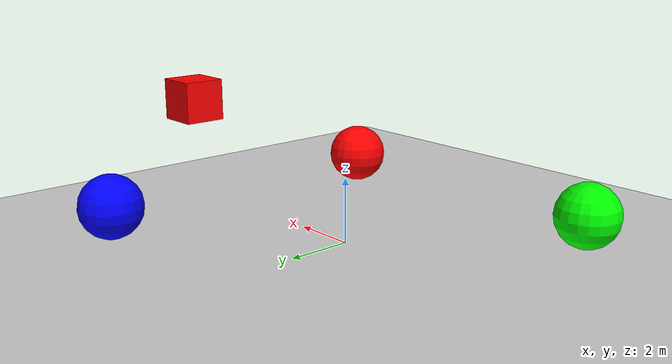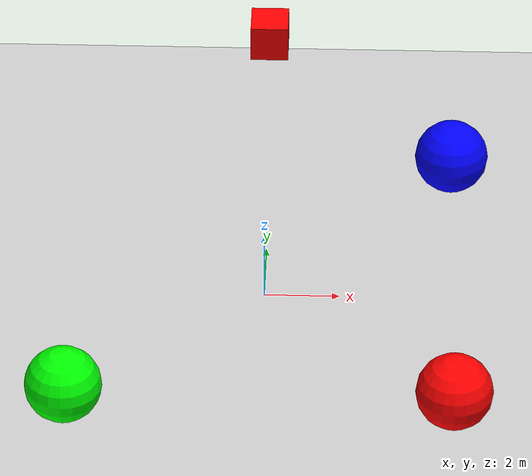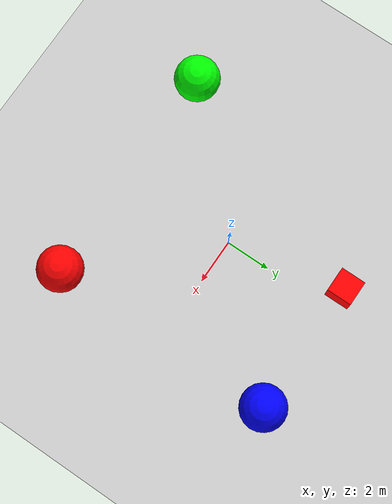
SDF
<sdf version="1.7">
 <world name="car_world">
  <physics name="1ms" type="ignored">
   <max_step_size>0.001</max_step_size>
   <real_time_factor>1.0</real_time_factor>
  </physics>
  <plugin filename="libignition-gazebo-physics-system.so" name="ignition::gazebo::systems::Physics"/>
  <plugin filename="libignition-gazebo-user-commands-system.so" name="ignition::gazebo::systems::UserCommands"/>
  <plugin filename="ignition-gazebo-sensors-system" name="ignition::gazebo::systems::Sensors">
   <render_engine>ogre</render_engine>
  </plugin>
  <plugin filename="libignition-gazebo-scene-broadcaster-system.so" name="ignition::gazebo::systems::SceneBroadcaster"/>
  <light type="directional" name="sun">
   <pose>0 0 10 0 0 0</pose>
   <diffuse>0.8 0.8 0.8 1</diffuse>
   <specular>0.2 0.2 0.2 1</specular>
   <attenuation>
    <range>1000</range>
    <constant>0.9</constant>
    <linear>0.01</linear>
    <quadratic>0.001</quadratic>
   </attenuation>
   <direction>-0.5 0.1 -0.9</direction>
  </light>
  <model name="ground_plane">
   <static>true</static>
   <link name="link">
    <collision name="collision">
     <geometry><plane><normal>0 0 1</normal><size>100 100</size></plane></geometry>
    </collision>
    <visual name="visual">
     <geometry><plane><normal>0 0 1</normal><size>100 100</size></plane></geometry>
     <material>
      <ambient>0.8 0.8 0.8 1</ambient>
      <diffuse>0.8 0.8 0.8 1</diffuse>
      <specular>0.8 0.8 0.8 1</specular>
     </material>
    </visual>
   </link>
  </model>
  <model name="box">
   <pose>0 5 5 0 0 0</pose>
   <link name="box_link">
    <inertial>
     <inertia><ixx>1</ixx><ixy>0</ixy><ixz>0</ixz><iyy>1</iyy><iyz>0</iyz><izz>1</izz></inertia>
     <mass>1.0</mass>
    </inertial>
    <collision name="box_collision"><geometry><box><size>1 1 1</size></box></geometry></collision>
    <visual name="box_visual">
     <geometry><box><size>1 1 1</size></box></geometry>
     <material><ambient>1 0 0 1</ambient><diffuse>1 0 0 1</diffuse><specular>1 0 0 1</specular></material>
    </visual>
   </link>
  </model>
  <model name="sphere">
   <static>true</static>
   <pose>-5 -5 1 0 0 0</pose>
   <link name="sphere_link">
    <collision name="sphere_collision"><geometry><sphere><radius>1</radius></sphere></geometry></collision>
    <visual name="sphere_visual">
     <geometry><sphere><radius>1</radius></sphere></geometry>
     <material><ambient>0 1 0 1</ambient><diffuse>0 1 0 1</diffuse><specular>0 1 0 1</specular></material>
     <cast_shadows>false</cast_shadows>
    </visual>
   </link>
  </model>
  <model name="sphere_2">
   <static>true</static>
   <pose>5 -5 1 0 0 0</pose>
   <link name="sphere_link_2">
    <collision name="sphere_collision_2"><geometry><sphere><radius>1</radius></sphere></geometry></collision>
    <visual name="sphere_visual_2">
     <geometry><sphere><radius>1</radius></sphere></geometry>
     <material><ambient>1 0 0 1</ambient><diffuse>1 0 0 1</diffuse><specular>1 0 0 1</specular></material>
     <cast_shadows>false</cast_shadows>
    </visual>
   </link>
  </model>
  <model name="sphere_3">
   <static>true</static>
   <pose>5 5 1 0 0 0</pose>
   <link name="sphere_link_3">
    <collision name="sphere_collision_3"><geometry><sphere><radius>1</radius></sphere></geometry></collision>
    <visual name="sphere_visual_3">
     <geometry><sphere><radius>1</radius></sphere></geometry>
     <material><ambient>0 0 1 1</ambient><diffuse>0 0 1 1</diffuse><specular>0 0 1 1</specular></material>
     <cast_shadows>false</cast_shadows>
    </visual>
   </link>
  </model>
 </world>
</sdf>
